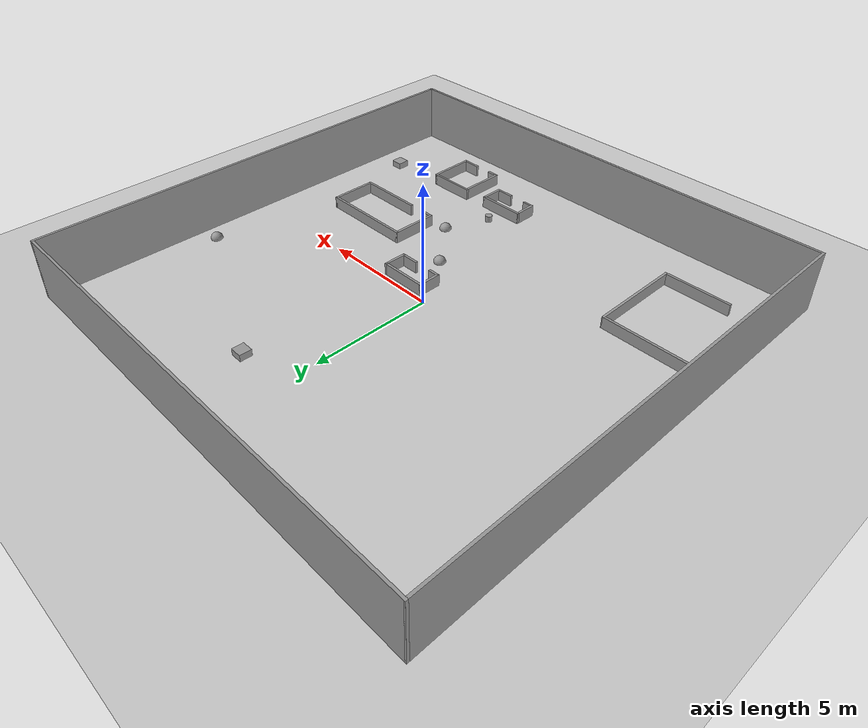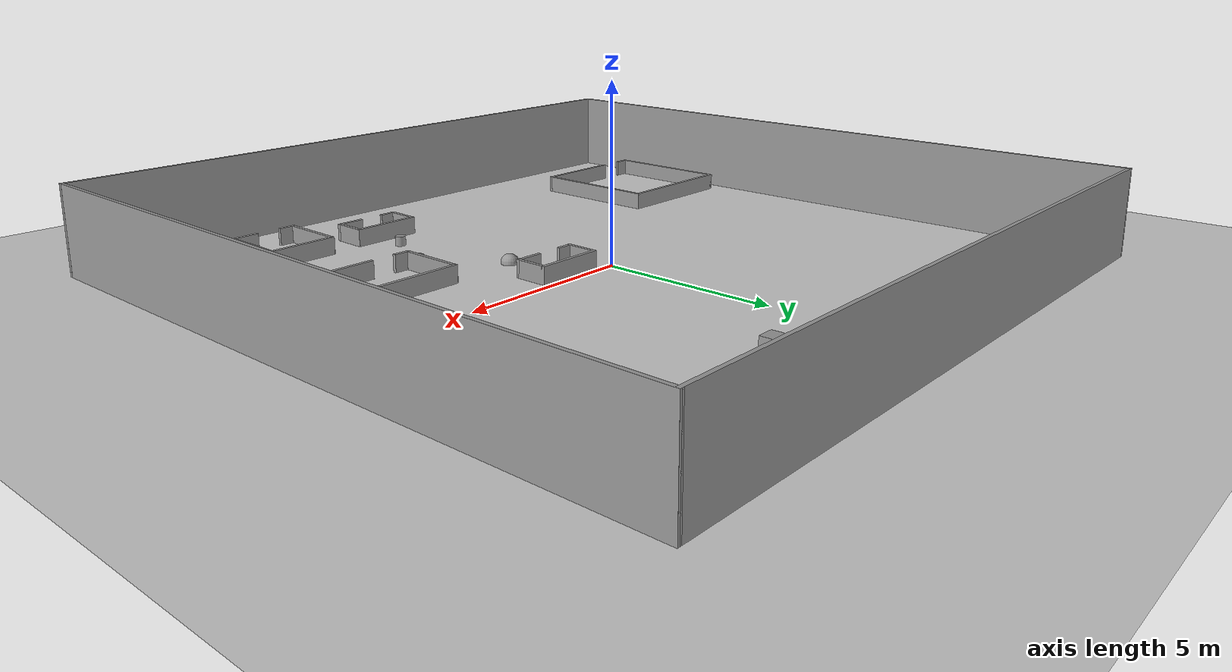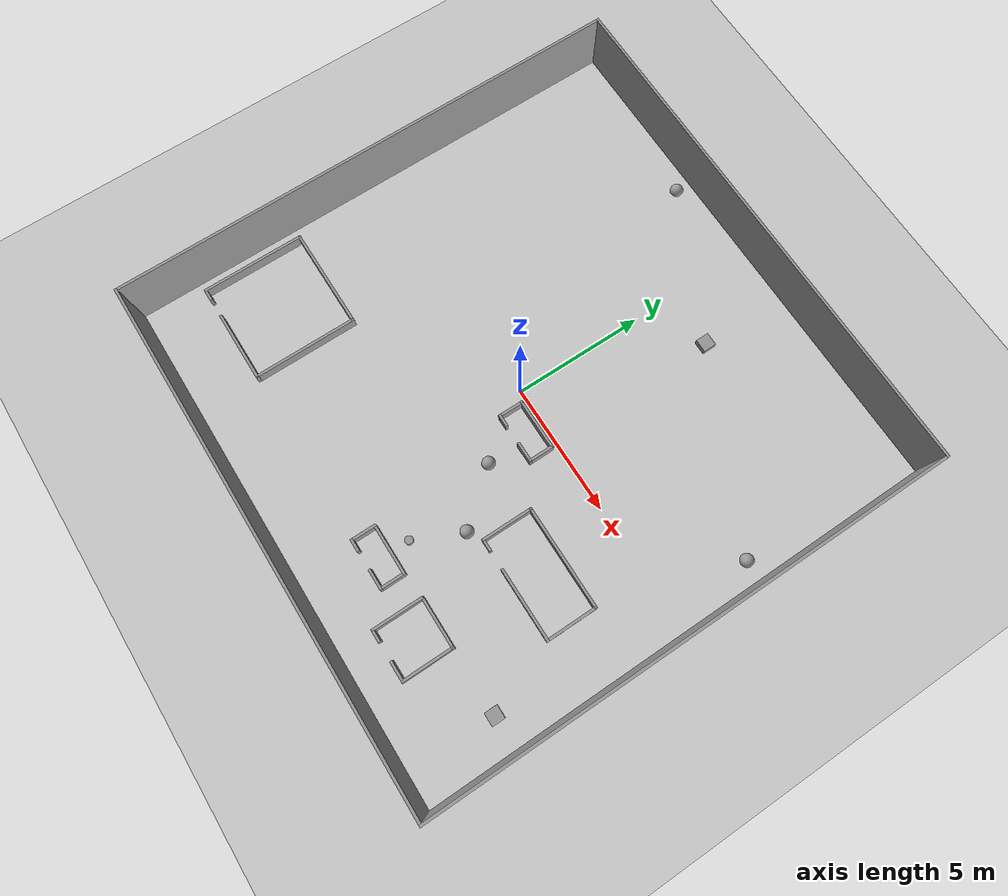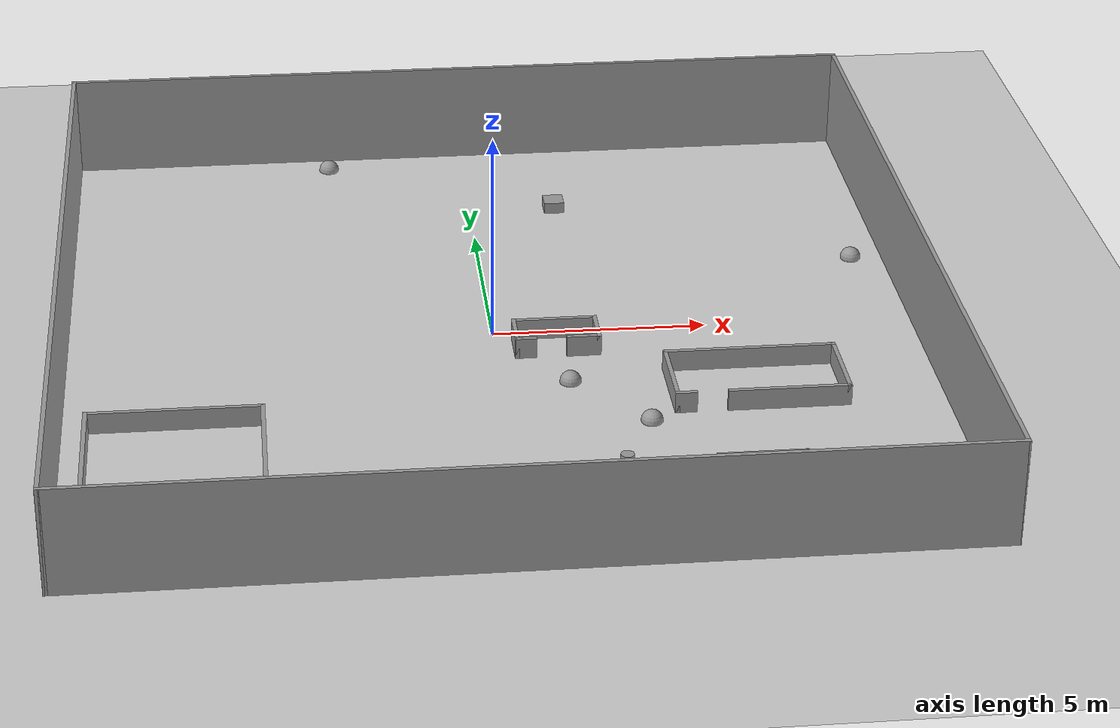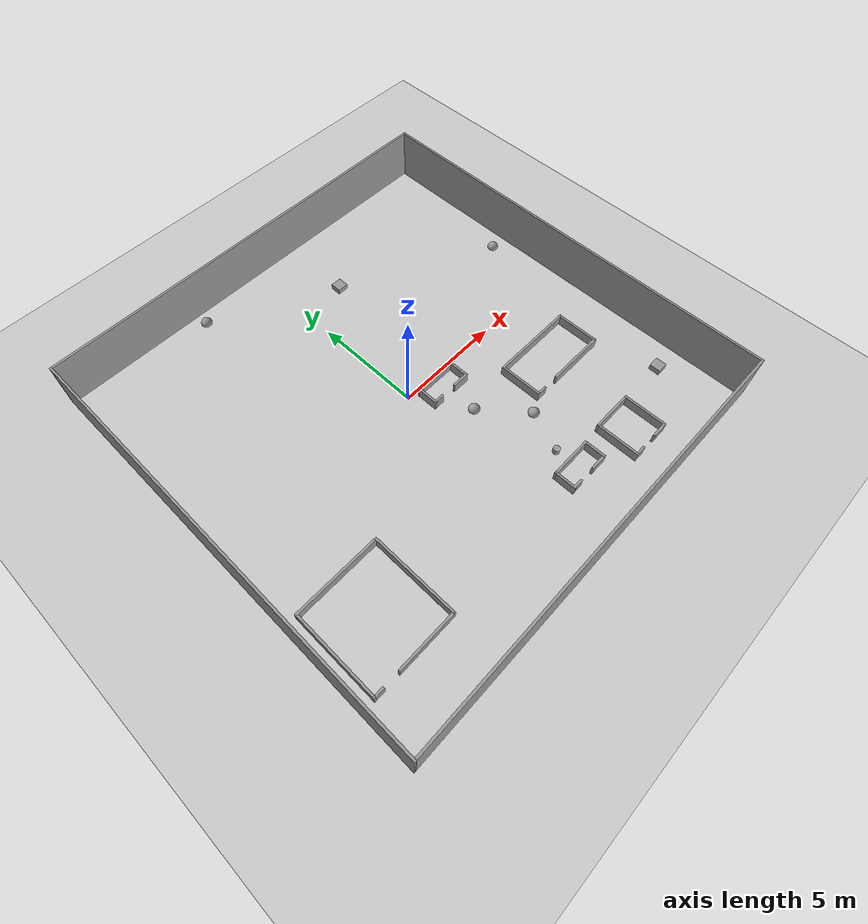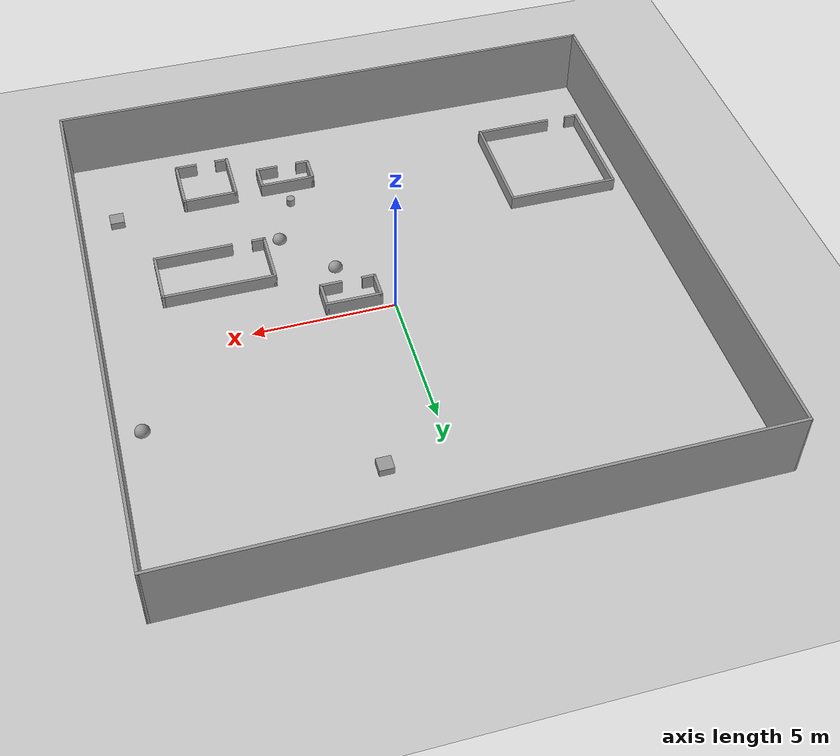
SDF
<sdf version="1.6">
 <world name="default">
  <model name="ground_plane">
   <static>1</static>
   <link name="link">
    <collision name="collision">
     <geometry><plane><normal>0 0 1</normal><size>20 20</size></plane></geometry>
     <surface>
      <contact><collide_bitmask>65535</collide_bitmask></contact>
      <friction><ode><mu>100</mu><mu2>50</mu2></ode></friction>
     </surface>
    </collision>
    <visual name="visual">
     <cast_shadows>0</cast_shadows>
     <geometry><plane><normal>0 0 1</normal><size>20 20</size></plane></geometry>
     <material>
      <script><uri>file://media/materials/scripts/gazebo.material</uri><name>Gazebo/Grey</name></script>
     </material>
    </visual>
   </link>
  </model>
  <model name="outsidewall.sdf">
   <link name="Wall_3">
    <collision name="Wall_3_Collision">
     <geometry><box><size>20 0.10 2.5</size></box></geometry>
     <pose>0 0 1.25 0 -0 0</pose>
    </collision>
    <visual name="Wall_3_Visual">
     <pose>0 0 1.25 0 -0 0</pose>
     <geometry><box><size>20 0.10 2.5</size></box></geometry>
     <material>
      <script><uri>file://media/materials/scripts/gazebo.material</uri><name>Gazebo/Grey</name></script>
      <ambient>1 1 1 1</ambient>
     </material>
     <meta><layer>0</layer></meta>
    </visual>
    <pose>0 9.95 0 0 -0 0</pose>
   </link>
   <link name="Wall_5">
    <collision name="Wall_5_Collision">
     <geometry><box><size>20 0.10 2.5</size></box></geometry>
     <pose>0 0 1.25 0 -0 0</pose>
    </collision>
    <visual name="Wall_5_Visual">
     <pose>0 0 1.25 0 -0 0</pose>
     <geometry><box><size>20 0.10 2.5</size></box></geometry>
     <material>
      <script><uri>file://media/materials/scripts/gazebo.material</uri><name>Gazebo/Grey</name></script>
      <ambient>1 1 1 1</ambient>
     </material>
     <meta><layer>0</layer></meta>
    </visual>
    <pose>-9.95 0 0 0 -0 1.5707</pose>
   </link>
   <link name="Wall_6">
    <collision name="Wall_6_Collision">
     <geometry><box><size>20 0.10 2.5</size></box></geometry>
     <pose>0 0 1.25 0 -0 0</pose>
    </collision>
    <visual name="Wall_6_Visual">
     <pose>0 0 1.25 0 -0 0</pose>
     <geometry><box><size>20 0.10 2.5</size></box></geometry>
     <material>
      <script><uri>file://media/materials/scripts/gazebo.material</uri><name>Gazebo/Grey</name></script>
      <ambient>1 1 1 1</ambient>
     </material>
     <meta><layer>0</layer></meta>
    </visual>
    <pose>0 -9.95 0 0 -0 0</pose>
   </link>
   <link name="Wall_7">
    <collision name="Wall_7_Collision">
     <geometry><box><size>20 0.10 2.5</size></box></geometry>
     <pose>0 0 1.25 0 -0 0</pose>
    </collision>
    <visual name="Wall_7_Visual">
     <pose>0 0 1.25 0 -0 0</pose>
     <geometry><box><size>20 0.10 2.5</size></box></geometry>
     <material>
      <script><uri>file://media/materials/scripts/gazebo.material</uri><name>Gazebo/Grey</name></script>
      <ambient>1 1 1 1</ambient>
     </material>
     <meta><layer>0</layer></meta>
    </visual>
    <pose>9.95 0 0 0 -0 1.5707</pose>
   </link>
   <static>1</static>
  </model>
  <model name="ball_d=50">
   <link name="link_1">
    <inertial>
     <mass>1</mass>
     <inertia><ixx>0.1</ixx><ixy>0</ixy><ixz>0</ixz><iyy>0.1</iyy><iyz>0</iyz><izz>0.1</izz></inertia>
    </inertial>
    <pose>3.15 -4.25 0 0 -0 0</pose>
    <visual name="visual">
     <geometry><sphere><radius>0.25</radius></sphere></geometry>
     <material>
      <lighting>1</lighting>
      <script><uri>file://media/materials/scripts/gazebo.material</uri><name>Gazebo/Grey</name></script>
      <shader type="vertex"><normal_map>__default__</normal_map></shader>
      <ambient>0.3 0.3 0.3 1</ambient>
      <diffuse>0.7 0.7 0.7 1</diffuse>
      <specular>0.01 0.01 0.01 1</specular>
      <emissive>0 0 0 1</emissive>
     </material>
    </visual>
    <collision name="collision">
     <geometry><sphere><radius>0.25</radius></sphere></geometry>
     <surface>
      <friction>
       <ode><mu>1</mu><mu2>1</mu2><fdir1>0 0 0</fdir1><slip1>0</slip1><slip2>0</slip2></ode>
       <torsional>
        <coefficient>1</coefficient>
        <patch_radius>0</patch_radius>
        <surface_radius>0</surface_radius>
        <use_patch_radius>1</use_patch_radius>
        <ode><slip>0</slip></ode>
       </torsional>
      </friction>
      <bounce><restitution_coefficient>0</restitution_coefficient><threshold>1e+06</threshold></bounce>
      <contact>
       <collide_without_contact>0</collide_without_contact>
       <collide_without_contact_bitmask>1</collide_without_contact_bitmask>
       <collide_bitmask>1</collide_bitmask>
       <ode>
        <soft_cfm>0</soft_cfm>
        <soft_erp>0.2</soft_erp>
        <kp>1e+13</kp>
        <kd>1</kd>
        <max_vel>0.01</max_vel>
        <min_depth>0</min_depth>
       </ode>
       <bullet>
        <split_impulse>1</split_impulse>
        <split_impulse_penetration_threshold>-0.01</split_impulse_penetration_threshold>
        <soft_cfm>0</soft_cfm>
        <soft_erp>0.2</soft_erp>
        <kp>1e+13</kp>
        <kd>1</kd>
       </bullet>
      </contact>
     </surface>
    </collision>
   </link>
   <static>0</static>
  </model>
  <model name="ball_d=50">
   <link name="link_1">
    <inertial>
     <mass>1</mass>
     <inertia><ixx>0.1</ixx><ixy>0</ixy><ixz>0</ixz><iyy>0.1</iyy><iyz>0</iyz><izz>0.1</izz></inertia>
    </inertial>
    <pose>9.15 3.15 0 0 -0 0</pose>
    <visual name="visual">
     <geometry><sphere><radius>0.25</radius></sphere></geometry>
     <material>
      <lighting>1</lighting>
      <script><uri>file://media/materials/scripts/gazebo.material</uri><name>Gazebo/Grey</name></script>
      <shader type="vertex"><normal_map>__default__</normal_map></shader>
      <ambient>0.3 0.3 0.3 1</ambient>
      <diffuse>0.7 0.7 0.7 1</diffuse>
      <specular>0.01 0.01 0.01 1</specular>
      <emissive>0 0 0 1</emissive>
     </material>
    </visual>
    <collision name="collision">
     <geometry><sphere><radius>0.25</radius></sphere></geometry>
     <surface>
      <friction>
       <ode><mu>1</mu><mu2>1</mu2><fdir1>0 0 0</fdir1><slip1>0</slip1><slip2>0</slip2></ode>
       <torsional>
        <coefficient>1</coefficient>
        <patch_radius>0</patch_radius>
        <surface_radius>0</surface_radius>
        <use_patch_radius>1</use_patch_radius>
        <ode><slip>0</slip></ode>
       </torsional>
      </friction>
      <bounce><restitution_coefficient>0</restitution_coefficient><threshold>1e+06</threshold></bounce>
      <contact>
       <collide_without_contact>0</collide_without_contact>
       <collide_without_contact_bitmask>1</collide_without_contact_bitmask>
       <collide_bitmask>1</collide_bitmask>
       <ode>
        <soft_cfm>0</soft_cfm>
        <soft_erp>0.2</soft_erp>
        <kp>1e+13</kp>
        <kd>1</kd>
        <max_vel>0.01</max_vel>
        <min_depth>0</min_depth>
       </ode>
       <bullet>
        <split_impulse>1</split_impulse>
        <split_impulse_penetration_threshold>-0.01</split_impulse_penetration_threshold>
        <soft_cfm>0</soft_cfm>
        <soft_erp>0.2</soft_erp>
        <kp>1e+13</kp>
        <kd>1</kd>
       </bullet>
      </contact>
     </surface>
    </collision>
   </link>
   <static>0</static>
  </model>
  <model name="ball_d=50">
   <link name="link_1">
    <inertial>
     <mass>1</mass>
     <inertia><ixx>0.1</ixx><ixy>0</ixy><ixz>0</ixz><iyy>0.1</iyy><iyz>0</iyz><izz>0.1</izz></inertia>
    </inertial>
    <pose>1.55 -2.35 0 0 -0 0</pose>
    <visual name="visual">
     <geometry><sphere><radius>0.25</radius></sphere></geometry>
     <material>
      <lighting>1</lighting>
      <script><uri>file://media/materials/scripts/gazebo.material</uri><name>Gazebo/Grey</name></script>
      <shader type="vertex"><normal_map>__default__</normal_map></shader>
      <ambient>0.3 0.3 0.3 1</ambient>
      <diffuse>0.7 0.7 0.7 1</diffuse>
      <specular>0.01 0.01 0.01 1</specular>
      <emissive>0 0 0 1</emissive>
     </material>
    </visual>
    <collision name="collision">
     <geometry><sphere><radius>0.25</radius></sphere></geometry>
     <surface>
      <friction>
       <ode><mu>1</mu><mu2>1</mu2><fdir1>0 0 0</fdir1><slip1>0</slip1><slip2>0</slip2></ode>
       <torsional>
        <coefficient>1</coefficient>
        <patch_radius>0</patch_radius>
        <surface_radius>0</surface_radius>
        <use_patch_radius>1</use_patch_radius>
        <ode><slip>0</slip></ode>
       </torsional>
      </friction>
      <bounce><restitution_coefficient>0</restitution_coefficient><threshold>1e+06</threshold></bounce>
      <contact>
       <collide_without_contact>0</collide_without_contact>
       <collide_without_contact_bitmask>1</collide_without_contact_bitmask>
       <collide_bitmask>1</collide_bitmask>
       <ode>
        <soft_cfm>0</soft_cfm>
        <soft_erp>0.2</soft_erp>
        <kp>1e+13</kp>
        <kd>1</kd>
        <max_vel>0.01</max_vel>
        <min_depth>0</min_depth>
       </ode>
       <bullet>
        <split_impulse>1</split_impulse>
        <split_impulse_penetration_threshold>-0.01</split_impulse_penetration_threshold>
        <soft_cfm>0</soft_cfm>
        <soft_erp>0.2</soft_erp>
        <kp>1e+13</kp>
        <kd>1</kd>
       </bullet>
      </contact>
     </surface>
    </collision>
   </link>
   <static>0</static>
  </model>
  <model name="ball_d=50">
   <link name="link_1">
    <inertial>
     <mass>1</mass>
     <inertia><ixx>0.1</ixx><ixy>0</ixy><ixz>0</ixz><iyy>0.1</iyy><iyz>0</iyz><izz>0.1</izz></inertia>
    </inertial>
    <pose>-3.45 9.35 0 0 -0 0</pose>
    <visual name="visual">
     <geometry><sphere><radius>0.25</radius></sphere></geometry>
     <material>
      <lighting>1</lighting>
      <script><uri>file://media/materials/scripts/gazebo.material</uri><name>Gazebo/Grey</name></script>
      <shader type="vertex"><normal_map>__default__</normal_map></shader>
      <ambient>0.3 0.3 0.3 1</ambient>
      <diffuse>0.7 0.7 0.7 1</diffuse>
      <specular>0.01 0.01 0.01 1</specular>
      <emissive>0 0 0 1</emissive>
     </material>
    </visual>
    <collision name="collision">
     <geometry><sphere><radius>0.25</radius></sphere></geometry>
     <surface>
      <friction>
       <ode><mu>1</mu><mu2>1</mu2><fdir1>0 0 0</fdir1><slip1>0</slip1><slip2>0</slip2></ode>
       <torsional>
        <coefficient>1</coefficient>
        <patch_radius>0</patch_radius>
        <surface_radius>0</surface_radius>
        <use_patch_radius>1</use_patch_radius>
        <ode><slip>0</slip></ode>
       </torsional>
      </friction>
      <bounce><restitution_coefficient>0</restitution_coefficient><threshold>1e+06</threshold></bounce>
      <contact>
       <collide_without_contact>0</collide_without_contact>
       <collide_without_contact_bitmask>1</collide_without_contact_bitmask>
       <collide_bitmask>1</collide_bitmask>
       <ode>
        <soft_cfm>0</soft_cfm>
        <soft_erp>0.2</soft_erp>
        <kp>1e+13</kp>
        <kd>1</kd>
        <max_vel>0.01</max_vel>
        <min_depth>0</min_depth>
       </ode>
       <bullet>
        <split_impulse>1</split_impulse>
        <split_impulse_penetration_threshold>-0.01</split_impulse_penetration_threshold>
        <soft_cfm>0</soft_cfm>
        <soft_erp>0.2</soft_erp>
        <kp>1e+13</kp>
        <kd>1</kd>
       </bullet>
      </contact>
     </surface>
    </collision>
   </link>
   <static>0</static>
  </model>
  <model name="box_d=50">
   <link name="link_2">
    <inertial>
     <mass>1</mass>
     <inertia>
      <ixx>0.166667</ixx>
      <ixy>0</ixy>
      <ixz>0</ixz>
      <iyy>0.166667</iyy>
      <iyz>0</iyz>
      <izz>0.166667</izz>
     </inertia>
    </inertial>
    <pose>8.65 -6.65 0 0 -0 0</pose>
    <visual name="visual">
     <geometry><box><size>0.5 0.5 0.5</size></box></geometry>
     <material>
      <lighting>1</lighting>
      <script><uri>file://media/materials/scripts/gazebo.material</uri><name>Gazebo/Grey</name></script>
      <shader type="vertex"><normal_map>__default__</normal_map></shader>
      <ambient>0.3 0.3 0.3 1</ambient>
      <diffuse>0.7 0.7 0.7 1</diffuse>
      <specular>0.01 0.01 0.01 1</specular>
      <emissive>0 0 0 1</emissive>
     </material>
    </visual>
    <collision name="collision">
     <geometry><box><size>0.5 0.5 0.5</size></box></geometry>
     <surface>
      <friction>
       <ode><mu>1</mu><mu2>1</mu2><fdir1>0 0 0</fdir1><slip1>0</slip1><slip2>0</slip2></ode>
       <torsional>
        <coefficient>1</coefficient>
        <patch_radius>0</patch_radius>
        <surface_radius>0</surface_radius>
        <use_patch_radius>1</use_patch_radius>
        <ode><slip>0</slip></ode>
       </torsional>
      </friction>
      <bounce><restitution_coefficient>0</restitution_coefficient><threshold>1e+06</threshold></bounce>
      <contact>
       <collide_without_contact>0</collide_without_contact>
       <collide_without_contact_bitmask>1</collide_without_contact_bitmask>
       <collide_bitmask>1</collide_bitmask>
       <ode>
        <soft_cfm>0</soft_cfm>
        <soft_erp>0.2</soft_erp>
        <kp>1e+13</kp>
        <kd>1</kd>
        <max_vel>0.01</max_vel>
        <min_depth>0</min_depth>
       </ode>
       <bullet>
        <split_impulse>1</split_impulse>
        <split_impulse_penetration_threshold>-0.01</split_impulse_penetration_threshold>
        <soft_cfm>0</soft_cfm>
        <soft_erp>0.2</soft_erp>
        <kp>1e+13</kp>
        <kd>1</kd>
       </bullet>
      </contact>
     </surface>
    </collision>
   </link>
   <static>0</static>
  </model>
  <model name="shape2">
   <pose>5.7 -3 0 0 -0 0</pose>
   <link name="Wall_0">
    <collision name="Wall_0_Collision">
     <geometry><box><size>3.98685 0.1 0.5</size></box></geometry>
     <pose>0 0 0.25 0 -0 0</pose>
    </collision>
    <visual name="Wall_0_Visual">
     <pose>0 0 0.25 0 -0 0</pose>
     <geometry><box><size>3.98685 0.1 0.5</size></box></geometry>
     <material>
      <script><uri>file://media/materials/scripts/gazebo.material</uri><name>Gazebo/Grey</name></script>
      <ambient>1 1 1 1</ambient>
     </material>
     <meta><layer>0</layer></meta>
    </visual>
    <pose>0.003288 0.95 0 0 -0 0</pose>
   </link>
   <link name="Wall_1">
    <collision name="Wall_1_Collision">
     <geometry><box><size>2 0.1 0.5</size></box></geometry>
     <pose>0 0 0.25 0 -0 0</pose>
    </collision>
    <visual name="Wall_1_Visual">
     <pose>0 0 0.25 0 -0 0</pose>
     <geometry><box><size>2 0.1 0.5</size></box></geometry>
     <material>
      <script><uri>file://media/materials/scripts/gazebo.material</uri><name>Gazebo/Grey</name></script>
      <ambient>1 1 1 1</ambient>
     </material>
     <meta><layer>0</layer></meta>
    </visual>
    <pose>1.94671 0 0 0 -0 -1.5708</pose>
   </link>
   <link name="Wall_2">
    <collision name="Wall_2_Collision">
     <geometry><box><size>2.8 0.1 0.5</size></box></geometry>
     <pose>0 0 0.25 0 -0 0</pose>
    </collision>
    <visual name="Wall_2_Visual">
     <pose>0 0 0.25 0 -0 0</pose>
     <geometry><box><size>2.8 0.1 0.5</size></box></geometry>
     <material>
      <script><uri>file://media/materials/scripts/gazebo.material</uri><name>Gazebo/Grey</name></script>
      <ambient>1 1 1 1</ambient>
     </material>
     <meta><layer>0</layer></meta>
    </visual>
    <pose>0.596712 -0.95 0 0 -0 3.14159</pose>
   </link>
   <link name="Wall_4">
    <collision name="Wall_4_Collision">
     <geometry><box><size>2 0.1 0.5</size></box></geometry>
     <pose>0 0 0.25 0 -0 0</pose>
    </collision>
    <visual name="Wall_4_Visual">
     <pose>0 0 0.25 0 -0 0</pose>
     <geometry><box><size>2 0.1 0.5</size></box></geometry>
     <material>
      <script><uri>file://media/materials/scripts/gazebo.material</uri><name>Gazebo/Grey</name></script>
      <ambient>1 1 1 1</ambient>
     </material>
     <meta><layer>0</layer></meta>
    </visual>
    <pose>-1.94671 0 0 0 -0 -1.5708</pose>
   </link>
   <link name="Wall_5">
    <collision name="Wall_5_Collision">
     <geometry><box><size>0.5 0.1 0.5</size></box></geometry>
     <pose>0 0 0.25 0 -0 0</pose>
    </collision>
    <visual name="Wall_5_Visual">
     <pose>0 0 0.25 0 -0 0</pose>
     <geometry><box><size>0.5 0.1 0.5</size></box></geometry>
     <material>
      <script><uri>file://media/materials/scripts/gazebo.material</uri><name>Gazebo/Grey</name></script>
      <ambient>1 1 1 1</ambient>
     </material>
     <meta><layer>0</layer></meta>
    </visual>
    <pose>-1.74671 -0.95 0 0 -0 0</pose>
   </link>
   <static>1</static>
  </model>
  <model name="shape6">
   <pose>-7.4 -5.6 0 0 -0 0</pose>
   <link name="Wall_27">
    <collision name="Wall_27_Collision">
     <geometry><box><size>4 0.1 0.5</size></box></geometry>
     <pose>0 0 0.25 0 -0 0</pose>
    </collision>
    <visual name="Wall_27_Visual">
     <pose>0 0 0.25 0 -0 0</pose>
     <geometry><box><size>4 0.1 0.5</size></box></geometry>
     <material>
      <script><uri>file://media/materials/scripts/gazebo.material</uri><name>Gazebo/Grey</name></script>
      <ambient>1 1 1 1</ambient>
     </material>
     <meta><layer>0</layer></meta>
    </visual>
    <pose>0 1.95 0 0 -0 0</pose>
   </link>
   <link name="Wall_28">
    <collision name="Wall_28_Collision">
     <geometry><box><size>4 0.1 0.5</size></box></geometry>
     <pose>0 0 0.25 0 -0 0</pose>
    </collision>
    <visual name="Wall_28_Visual">
     <pose>0 0 0.25 0 -0 0</pose>
     <geometry><box><size>4 0.1 0.5</size></box></geometry>
     <material>
      <script><uri>file://media/materials/scripts/gazebo.material</uri><name>Gazebo/Grey</name></script>
      <ambient>1 1 1 1</ambient>
     </material>
     <meta><layer>0</layer></meta>
    </visual>
    <pose>1.95 -0 0 0 -0 -1.5708</pose>
   </link>
   <link name="Wall_29">
    <collision name="Wall_29_Collision">
     <geometry><box><size>2.8 0.1 0.5</size></box></geometry>
     <pose>0 0 0.25 0 -0 0</pose>
    </collision>
    <visual name="Wall_29_Visual">
     <pose>0 0 0.25 0 -0 0</pose>
     <geometry><box><size>2.8 0.1 0.5</size></box></geometry>
     <material>
      <script><uri>file://media/materials/scripts/gazebo.material</uri><name>Gazebo/Grey</name></script>
      <ambient>1 1 1 1</ambient>
     </material>
     <meta><layer>0</layer></meta>
    </visual>
    <pose>0.6 -1.95 0 0 -0 3.14159</pose>
   </link>
   <link name="Wall_31">
    <collision name="Wall_31_Collision">
     <geometry><box><size>4 0.1 0.5</size></box></geometry>
     <pose>0 0 0.25 0 -0 0</pose>
    </collision>
    <visual name="Wall_31_Visual">
     <pose>0 0 0.25 0 -0 0</pose>
     <geometry><box><size>4 0.1 0.5</size></box></geometry>
     <material>
      <script><uri>file://media/materials/scripts/gazebo.material</uri><name>Gazebo/Grey</name></script>
      <ambient>1 1 1 1</ambient>
     </material>
     <meta><layer>0</layer></meta>
    </visual>
    <pose>-1.95 -0 0 0 -0 -1.5708</pose>
   </link>
   <link name="Wall_32">
    <collision name="Wall_32_Collision">
     <geometry><box><size>0.5 0.1 0.5</size></box></geometry>
     <pose>0 0 0.25 0 -0 0</pose>
    </collision>
    <visual name="Wall_32_Visual">
     <pose>0 0 0.25 0 -0 0</pose>
     <geometry><box><size>0.5 0.1 0.5</size></box></geometry>
     <material>
      <script><uri>file://media/materials/scripts/gazebo.material</uri><name>Gazebo/Grey</name></script>
      <ambient>1 1 1 1</ambient>
     </material>
     <meta><layer>0</layer></meta>
    </visual>
    <pose>-1.75 -1.95 0 0 -0 0</pose>
   </link>
   <static>1</static>
  </model>
  <model name="box_d=50">
   <link name="link_2">
    <inertial>
     <mass>1</mass>
     <inertia>
      <ixx>0.166667</ixx>
      <ixy>0</ixy>
      <ixz>0</ixz>
      <iyy>0.166667</iyy>
      <iyz>0</iyz>
      <izz>0.166667</izz>
     </inertia>
    </inertial>
    <pose>2.15 6.55 0 0 -0 0</pose>
    <visual name="visual">
     <geometry><box><size>0.5 0.5 0.5</size></box></geometry>
     <material>
      <lighting>1</lighting>
      <script><uri>file://media/materials/scripts/gazebo.material</uri><name>Gazebo/Grey</name></script>
      <shader type="vertex"><normal_map>__default__</normal_map></shader>
      <ambient>0.3 0.3 0.3 1</ambient>
      <diffuse>0.7 0.7 0.7 1</diffuse>
      <specular>0.01 0.01 0.01 1</specular>
      <emissive>0 0 0 1</emissive>
     </material>
    </visual>
    <collision name="collision">
     <geometry><box><size>0.5 0.5 0.5</size></box></geometry>
     <surface>
      <friction>
       <ode><mu>1</mu><mu2>1</mu2><fdir1>0 0 0</fdir1><slip1>0</slip1><slip2>0</slip2></ode>
       <torsional>
        <coefficient>1</coefficient>
        <patch_radius>0</patch_radius>
        <surface_radius>0</surface_radius>
        <use_patch_radius>1</use_patch_radius>
        <ode><slip>0</slip></ode>
       </torsional>
      </friction>
      <bounce><restitution_coefficient>0</restitution_coefficient><threshold>1e+06</threshold></bounce>
      <contact>
       <collide_without_contact>0</collide_without_contact>
       <collide_without_contact_bitmask>1</collide_without_contact_bitmask>
       <collide_bitmask>1</collide_bitmask>
       <ode>
        <soft_cfm>0</soft_cfm>
        <soft_erp>0.2</soft_erp>
        <kp>1e+13</kp>
        <kd>1</kd>
        <max_vel>0.01</max_vel>
        <min_depth>0</min_depth>
       </ode>
       <bullet>
        <split_impulse>1</split_impulse>
        <split_impulse_penetration_threshold>-0.01</split_impulse_penetration_threshold>
        <soft_cfm>0</soft_cfm>
        <soft_erp>0.2</soft_erp>
        <kp>1e+13</kp>
        <kd>1</kd>
       </bullet>
      </contact>
     </surface>
    </collision>
   </link>
   <static>0</static>
  </model>
  <model name="shape1">
   <pose>2.3 -7.2 0 0 -0 0</pose>
   <link name="Wall_0">
    <collision name="Wall_0_Collision">
     <geometry><box><size>2 0.1 0.5</size></box></geometry>
     <pose>0 0 0.25 0 -0 0</pose>
    </collision>
    <visual name="Wall_0_Visual">
     <pose>0 0 0.25 0 -0 0</pose>
     <geometry><box><size>2 0.1 0.5</size></box></geometry>
     <material>
      <script><uri>file://media/materials/scripts/gazebo.material</uri><name>Gazebo/Grey</name></script>
      <ambient>1 1 1 1</ambient>
     </material>
     <meta><layer>0</layer></meta>
    </visual>
    <pose>0 0.45 0 0 -0 0</pose>
   </link>
   <link name="Wall_1">
    <collision name="Wall_1_Collision">
     <geometry><box><size>1 0.1 0.5</size></box></geometry>
     <pose>0 0 0.25 0 -0 0</pose>
    </collision>
    <visual name="Wall_1_Visual">
     <pose>0 0 0.25 0 -0 0</pose>
     <geometry><box><size>1 0.1 0.5</size></box></geometry>
     <material>
      <script><uri>file://media/materials/scripts/gazebo.material</uri><name>Gazebo/Grey</name></script>
      <ambient>1 1 1 1</ambient>
     </material>
     <meta><layer>0</layer></meta>
    </visual>
    <pose>0.95 -0 0 0 -0 -1.5708</pose>
   </link>
   <link name="Wall_2">
    <collision name="Wall_2_Collision">
     <geometry><box><size>0.8 0.1 0.5</size></box></geometry>
     <pose>0 0 0.25 0 -0 0</pose>
    </collision>
    <visual name="Wall_2_Visual">
     <pose>0 0 0.25 0 -0 0</pose>
     <geometry><box><size>0.8 0.1 0.5</size></box></geometry>
     <material>
      <script><uri>file://media/materials/scripts/gazebo.material</uri><name>Gazebo/Grey</name></script>
      <ambient>1 1 1 1</ambient>
     </material>
     <meta><layer>0</layer></meta>
    </visual>
    <pose>0.6 -0.45 0 0 -0 3.14159</pose>
   </link>
   <link name="Wall_4">
    <collision name="Wall_4_Collision">
     <geometry><box><size>1 0.1 0.5</size></box></geometry>
     <pose>0 0 0.25 0 -0 0</pose>
    </collision>
    <visual name="Wall_4_Visual">
     <pose>0 0 0.25 0 -0 0</pose>
     <geometry><box><size>1 0.1 0.5</size></box></geometry>
     <material>
      <script><uri>file://media/materials/scripts/gazebo.material</uri><name>Gazebo/Grey</name></script>
      <ambient>1 1 1 1</ambient>
     </material>
     <meta><layer>0</layer></meta>
    </visual>
    <pose>-0.95 -0 0 0 -0 -1.5708</pose>
   </link>
   <link name="Wall_5">
    <collision name="Wall_5_Collision">
     <geometry><box><size>0.499474 0.1 0.5</size></box></geometry>
     <pose>0 0 0.25 0 -0 0</pose>
    </collision>
    <visual name="Wall_5_Visual">
     <pose>0 0 0.25 0 -0 0</pose>
     <geometry><box><size>0.499474 0.1 0.5</size></box></geometry>
     <material>
      <script><uri>file://media/materials/scripts/gazebo.material</uri><name>Gazebo/Grey</name></script>
      <ambient>1 1 1 1</ambient>
     </material>
     <meta><layer>0</layer></meta>
    </visual>
    <pose>-0.75 -0.45 0 0 -0 0</pose>
   </link>
   <static>1</static>
  </model>
  <model name="cylinder_d=30">
   <link name="link_0">
    <inertial>
     <mass>1</mass>
     <inertia><ixx>0.145833</ixx><ixy>0</ixy><ixz>0</ixz><iyy>0.145833</iyy><iyz>0</iyz><izz>0.125</izz></inertia>
    </inertial>
    <pose>2.35 -6.05 0 0 -0 0</pose>
    <visual name="visual">
     <geometry><cylinder><radius>0.15</radius><length>0.5</length></cylinder></geometry>
     <material>
      <lighting>1</lighting>
      <script><uri>file://media/materials/scripts/gazebo.material</uri><name>Gazebo/Grey</name></script>
      <shader type="vertex"><normal_map>__default__</normal_map></shader>
      <ambient>0.3 0.3 0.3 1</ambient>
      <diffuse>0.7 0.7 0.7 1</diffuse>
      <specular>0.01 0.01 0.01 1</specular>
      <emissive>0 0 0 1</emissive>
     </material>
    </visual>
    <collision name="collision">
     <geometry><cylinder><radius>0.15</radius><length>0.5</length></cylinder></geometry>
     <surface>
      <friction>
       <ode><mu>1</mu><mu2>1</mu2><fdir1>0 0 0</fdir1><slip1>0</slip1><slip2>0</slip2></ode>
       <torsional>
        <coefficient>1</coefficient>
        <patch_radius>0</patch_radius>
        <surface_radius>0</surface_radius>
        <use_patch_radius>1</use_patch_radius>
        <ode><slip>0</slip></ode>
       </torsional>
      </friction>
      <bounce><restitution_coefficient>0</restitution_coefficient><threshold>1e+06</threshold></bounce>
      <contact>
       <collide_without_contact>0</collide_without_contact>
       <collide_without_contact_bitmask>1</collide_without_contact_bitmask>
       <collide_bitmask>1</collide_bitmask>
       <ode>
        <soft_cfm>0</soft_cfm>
        <soft_erp>0.2</soft_erp>
        <kp>1e+13</kp>
        <kd>1</kd>
        <max_vel>0.01</max_vel>
        <min_depth>0</min_depth>
       </ode>
       <bullet>
        <split_impulse>1</split_impulse>
        <split_impulse_penetration_threshold>-0.01</split_impulse_penetration_threshold>
        <soft_cfm>0</soft_cfm>
        <soft_erp>0.2</soft_erp>
        <kp>1e+13</kp>
        <kd>1</kd>
       </bullet>
      </contact>
     </surface>
    </collision>
   </link>
   <static>0</static>
  </model>
  <model name="shape5">
   <pose>5.2 -7.6 0 0 -0 0</pose>
   <link name="Wall_20">
    <collision name="Wall_20_Collision">
     <geometry><box><size>2 0.1 0.5</size></box></geometry>
     <pose>0 0 0.25 0 -0 0</pose>
    </collision>
    <visual name="Wall_20_Visual">
     <pose>0 0 0.25 0 -0 0</pose>
     <geometry><box><size>2 0.1 0.5</size></box></geometry>
     <material>
      <script><uri>file://media/materials/scripts/gazebo.material</uri><name>Gazebo/Grey</name></script>
      <ambient>1 1 1 1</ambient>
     </material>
     <meta><layer>0</layer></meta>
    </visual>
    <pose>-0 0.95 0 0 -0 0</pose>
   </link>
   <link name="Wall_21">
    <collision name="Wall_21_Collision">
     <geometry><box><size>2 0.1 0.5</size></box></geometry>
     <pose>0 0 0.25 0 -0 0</pose>
    </collision>
    <visual name="Wall_21_Visual">
     <pose>0 0 0.25 0 -0 0</pose>
     <geometry><box><size>2 0.1 0.5</size></box></geometry>
     <material>
      <script><uri>file://media/materials/scripts/gazebo.material</uri><name>Gazebo/Grey</name></script>
      <ambient>1 1 1 1</ambient>
     </material>
     <meta><layer>0</layer></meta>
    </visual>
    <pose>0.95 0 0 0 -0 -1.5708</pose>
   </link>
   <link name="Wall_22">
    <collision name="Wall_22_Collision">
     <geometry><box><size>0.8 0.1 0.5</size></box></geometry>
     <pose>0 0 0.25 0 -0 0</pose>
    </collision>
    <visual name="Wall_22_Visual">
     <pose>0 0 0.25 0 -0 0</pose>
     <geometry><box><size>0.8 0.1 0.5</size></box></geometry>
     <material>
      <script><uri>file://media/materials/scripts/gazebo.material</uri><name>Gazebo/Grey</name></script>
      <ambient>1 1 1 1</ambient>
     </material>
     <meta><layer>0</layer></meta>
    </visual>
    <pose>0.6 -0.95 0 0 -0 3.14159</pose>
   </link>
   <link name="Wall_24">
    <collision name="Wall_24_Collision">
     <geometry><box><size>2 0.1 0.5</size></box></geometry>
     <pose>0 0 0.25 0 -0 0</pose>
    </collision>
    <visual name="Wall_24_Visual">
     <pose>0 0 0.25 0 -0 0</pose>
     <geometry><box><size>2 0.1 0.5</size></box></geometry>
     <material>
      <script><uri>file://media/materials/scripts/gazebo.material</uri><name>Gazebo/Grey</name></script>
      <ambient>1 1 1 1</ambient>
     </material>
     <meta><layer>0</layer></meta>
    </visual>
    <pose>-0.95 0 0 0 -0 -1.5708</pose>
   </link>
   <link name="Wall_25">
    <collision name="Wall_25_Collision">
     <geometry><box><size>0.5 0.1 0.5</size></box></geometry>
     <pose>0 0 0.25 0 -0 0</pose>
    </collision>
    <visual name="Wall_25_Visual">
     <pose>0 0 0.25 0 -0 0</pose>
     <geometry><box><size>0.5 0.1 0.5</size></box></geometry>
     <material>
      <script><uri>file://media/materials/scripts/gazebo.material</uri><name>Gazebo/Grey</name></script>
      <ambient>1 1 1 1</ambient>
     </material>
     <meta><layer>0</layer></meta>
    </visual>
    <pose>-0.75 -0.95 0 0 -0 0</pose>
   </link>
   <static>1</static>
  </model>
  <model name="shape1">
   <pose>1.4 -0.7 0 0 -0 0</pose>
   <link name="Wall_0">
    <collision name="Wall_0_Collision">
     <geometry><box><size>2 0.1 0.5</size></box></geometry>
     <pose>0 0 0.25 0 -0 0</pose>
    </collision>
    <visual name="Wall_0_Visual">
     <pose>0 0 0.25 0 -0 0</pose>
     <geometry><box><size>2 0.1 0.5</size></box></geometry>
     <material>
      <script><uri>file://media/materials/scripts/gazebo.material</uri><name>Gazebo/Grey</name></script>
      <ambient>1 1 1 1</ambient>
     </material>
     <meta><layer>0</layer></meta>
    </visual>
    <pose>0 0.45 0 0 -0 0</pose>
   </link>
   <link name="Wall_1">
    <collision name="Wall_1_Collision">
     <geometry><box><size>1 0.1 0.5</size></box></geometry>
     <pose>0 0 0.25 0 -0 0</pose>
    </collision>
    <visual name="Wall_1_Visual">
     <pose>0 0 0.25 0 -0 0</pose>
     <geometry><box><size>1 0.1 0.5</size></box></geometry>
     <material>
      <script><uri>file://media/materials/scripts/gazebo.material</uri><name>Gazebo/Grey</name></script>
      <ambient>1 1 1 1</ambient>
     </material>
     <meta><layer>0</layer></meta>
    </visual>
    <pose>0.95 -0 0 0 -0 -1.5708</pose>
   </link>
   <link name="Wall_2">
    <collision name="Wall_2_Collision">
     <geometry><box><size>0.8 0.1 0.5</size></box></geometry>
     <pose>0 0 0.25 0 -0 0</pose>
    </collision>
    <visual name="Wall_2_Visual">
     <pose>0 0 0.25 0 -0 0</pose>
     <geometry><box><size>0.8 0.1 0.5</size></box></geometry>
     <material>
      <script><uri>file://media/materials/scripts/gazebo.material</uri><name>Gazebo/Grey</name></script>
      <ambient>1 1 1 1</ambient>
     </material>
     <meta><layer>0</layer></meta>
    </visual>
    <pose>0.6 -0.45 0 0 -0 3.14159</pose>
   </link>
   <link name="Wall_4">
    <collision name="Wall_4_Collision">
     <geometry><box><size>1 0.1 0.5</size></box></geometry>
     <pose>0 0 0.25 0 -0 0</pose>
    </collision>
    <visual name="Wall_4_Visual">
     <pose>0 0 0.25 0 -0 0</pose>
     <geometry><box><size>1 0.1 0.5</size></box></geometry>
     <material>
      <script><uri>file://media/materials/scripts/gazebo.material</uri><name>Gazebo/Grey</name></script>
      <ambient>1 1 1 1</ambient>
     </material>
     <meta><layer>0</layer></meta>
    </visual>
    <pose>-0.95 -0 0 0 -0 -1.5708</pose>
   </link>
   <link name="Wall_5">
    <collision name="Wall_5_Collision">
     <geometry><box><size>0.499474 0.1 0.5</size></box></geometry>
     <pose>0 0 0.25 0 -0 0</pose>
    </collision>
    <visual name="Wall_5_Visual">
     <pose>0 0 0.25 0 -0 0</pose>
     <geometry><box><size>0.499474 0.1 0.5</size></box></geometry>
     <material>
      <script><uri>file://media/materials/scripts/gazebo.material</uri><name>Gazebo/Grey</name></script>
      <ambient>1 1 1 1</ambient>
     </material>
     <meta><layer>0</layer></meta>
    </visual>
    <pose>-0.75 -0.45 0 0 -0 0</pose>
   </link>
   <static>1</static>
  </model>
 </world>
</sdf>
